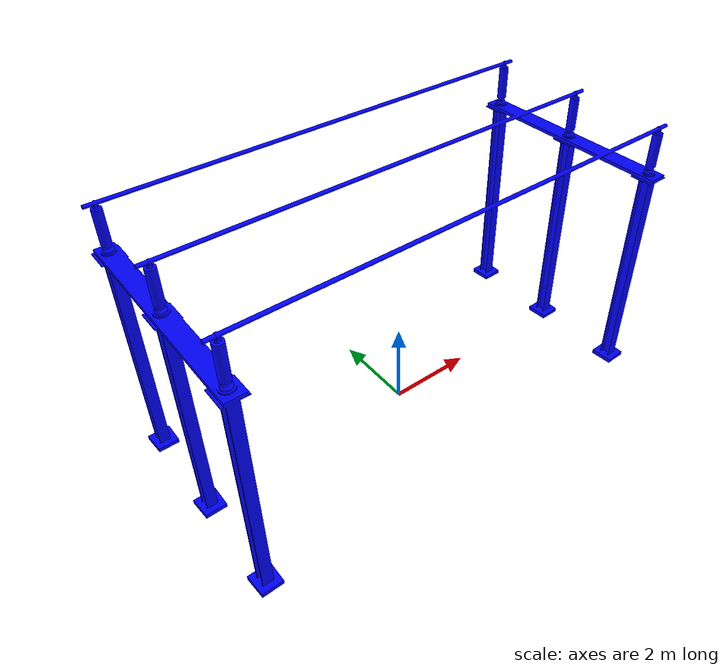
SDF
<?xml version="1.0" ?>
<sdf version="1.8">
  <model name="Electrical_Array_7">
    <static>true</static>
    <link name="link">
      <collision name="collision">
        <geometry>
          <mesh>
            <uri>model://Electrical_Array_7/Meshes/Electrical_Array_7.stl</uri>
            <scale>0.001 0.001 0.001</scale>
          </mesh>
        </geometry>
      </collision>

      <visual name="visual">
        <geometry>
          <mesh>
            <uri>model://Electrical_Array_7/Meshes/Electrical_Array_7.stl</uri>
            <scale>0.001 0.001 0.001</scale>
          </mesh>
        </geometry>
        <material>
          <diffuse>0.0 0.0 1.0 1.0</diffuse>
        </material>
      </visual>
    </link>
  </model>
</sdf>
